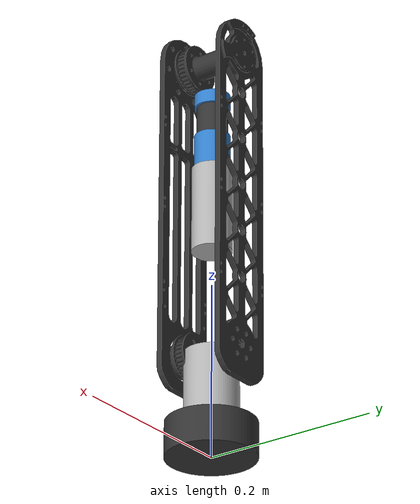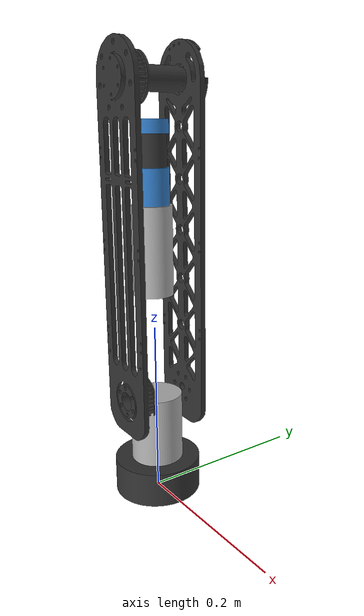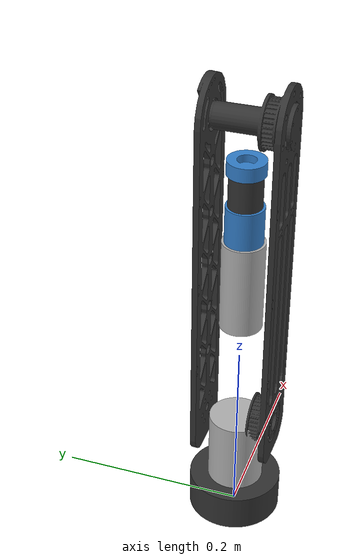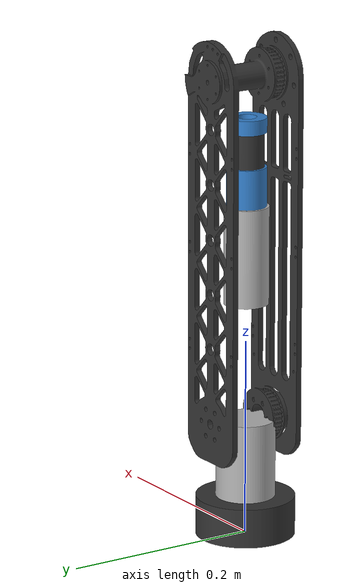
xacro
<?xml version="1.0"?>
<robot xmlns:xacro="http://www.ros.org/wiki/xacro" name="arm_6dof">

  <!-- ===================== MATERIALS ===================== -->
  <material name="dark_grey">
    <color rgba="0.2 0.2 0.2 1.0"/>
  </material>
  <material name="light_grey">
    <color rgba="0.7 0.7 0.7 1.0"/>
  </material>
  <material name="blue">
    <color rgba="0.2 0.5 0.8 1.0"/>
  </material>

  <!-- ===================== BASE LINK ===================== -->
  <link name="base_link">
    <visual>
      <geometry>
        <mesh filename="package://arm_description/meshes/base_link.stl" />
      </geometry>
      <material name="dark_grey"/>
    </visual>
    <collision>
      <geometry>
        <mesh filename="package://arm_description/meshes/base_link.stl" />
      </geometry>
    </collision>
    <inertial>
      <mass value="0.5"/>
      <inertia ixx="0.001" iyy="0.001" izz="0.001" ixy="0" ixz="0" iyz="0"/>
    </inertial>
  </link>

  <!-- ===================== JOINT 1 — Waist (Z axis) ===================== -->
  <joint name="joint_1" type="revolute">
    <parent link="base_link"/>
    <child link="link_1"/>
    <!-- Joint sits on top of base: 40mm up -->
    <origin xyz="0 0 0.04" rpy="0 0 0"/>
    <axis xyz="0 0 1"/>
    <limit lower="-3.14159" upper="3.14159" effort="100" velocity="1.0"/>
  </joint>

  <!-- ===================== LINK 1 ===================== -->
  <link name="link_1">
    <visual>
      <geometry>
        <mesh filename="package://arm_description/meshes/link_1.stl" />
      </geometry>
      <material name="light_grey"/>
    </visual>
    <collision>
      <geometry>
        <mesh filename="package://arm_description/meshes/link_1.stl" />
      </geometry>
    </collision>
    <inertial>
      <mass value="0.4"/>
      <inertia ixx="0.001" iyy="0.001" izz="0.001" ixy="0" ixz="0" iyz="0"/>
    </inertial>
  </link>

  <!-- ===================== JOINT 2 — Shoulder (Y axis) ===================== -->
  <joint name="joint_2" type="revolute">
    <parent link="link_1"/>
    <child link="link_2"/>
    <!-- Joint sits on top of link_1: 80mm up -->
    <origin xyz="0 0 0.08" rpy="0 0 0"/>
    <axis xyz="0 1 0"/>
    <limit lower="-1.5708" upper="1.5708" effort="100" velocity="1.0"/>
  </joint>

  <!-- ===================== LINK 2 ===================== -->
  <link name="link_2">
    <visual>
      <geometry>
        <mesh filename="package://arm_description/meshes/link_2.stl" />
      </geometry>
      <material name="dark_grey"/>
    </visual>
    <collision>
      <geometry>
        <mesh filename="package://arm_description/meshes/link_2.stl" />
      </geometry>
    </collision>
    <inertial>
      <mass value="0.4"/>
      <inertia ixx="0.001" iyy="0.001" izz="0.001" ixy="0" ixz="0" iyz="0"/>
    </inertial>
  </link>

  <!-- ===================== JOINT 3 — Elbow (Y axis) ===================== -->
  <joint name="joint_3" type="revolute">
    <parent link="link_2"/>
    <child link="link_3"/>
    <!-- Joint sits on top of link_2: 120mm up -->
    <origin xyz="0 0 0.12" rpy="0 0 0"/>
    <axis xyz="0 1 0"/>
    <limit lower="-1.5708" upper="1.5708" effort="100" velocity="1.0"/>
  </joint>

  <!-- ===================== LINK 3 ===================== -->
  <link name="link_3">
    <visual>
      <geometry>
        <mesh filename="package://arm_description/meshes/link_3.stl" />
      </geometry>
      <material name="light_grey"/>
    </visual>
    <collision>
      <geometry>
        <mesh filename="package://arm_description/meshes/link_3.stl" />
      </geometry>
    </collision>
    <inertial>
      <mass value="0.3"/>
      <inertia ixx="0.001" iyy="0.001" izz="0.001" ixy="0" ixz="0" iyz="0"/>
    </inertial>
  </link>

  <!-- ===================== JOINT 4 — Wrist roll (X axis) ===================== -->
  <joint name="joint_4" type="revolute">
    <parent link="link_3"/>
    <child link="link_4"/>
    <!-- Joint sits on top of link_3: 100mm up -->
    <origin xyz="0 0 0.10" rpy="0 0 0"/>
    <axis xyz="1 0 0"/>
    <limit lower="-3.14159" upper="3.14159" effort="50" velocity="1.5"/>
  </joint>

  <!-- ===================== LINK 4 ===================== -->
  <link name="link_4">
    <visual>
      <geometry>
        <mesh filename="package://arm_description/meshes/link_4.stl" />
      </geometry>
      <material name="blue"/>
    </visual>
    <collision>
      <geometry>
        <mesh filename="package://arm_description/meshes/link_4.stl" />
      </geometry>
    </collision>
    <inertial>
      <mass value="0.2"/>
      <inertia ixx="0.0005" iyy="0.0005" izz="0.0005" ixy="0" ixz="0" iyz="0"/>
    </inertial>
  </link>

  <!-- ===================== JOINT 5 — Wrist pitch (Y axis) ===================== -->
  <joint name="joint_5" type="revolute">
    <parent link="link_4"/>
    <child link="link_5"/>
    <!-- Joint sits on top of link_4: 40mm up -->
    <origin xyz="0 0 0.04" rpy="0 0 0"/>
    <axis xyz="0 1 0"/>
    <limit lower="-1.5708" upper="1.5708" effort="50" velocity="1.5"/>
  </joint>

  <!-- ===================== LINK 5 ===================== -->
  <link name="link_5">
    <visual>
      <geometry>
        <mesh filename="package://arm_description/meshes/link_5.stl" />
      </geometry>
      <material name="dark_grey"/>
    </visual>
    <collision>
      <geometry>
        <mesh filename="package://arm_description/meshes/link_5.stl" />
      </geometry>
    </collision>
    <inertial>
      <mass value="0.2"/>
      <inertia ixx="0.0005" iyy="0.0005" izz="0.0005" ixy="0" ixz="0" iyz="0"/>
    </inertial>
  </link>

  <!-- ===================== JOINT 6 — Tool roll (Z axis) ===================== -->
  <joint name="joint_6" type="revolute">
    <parent link="link_5"/>
    <child link="link_6"/>
    <!-- Joint sits on top of link_5: 35mm up -->
    <origin xyz="0 0 0.035" rpy="0 0 0"/>
    <axis xyz="0 0 1"/>
    <limit lower="-3.14159" upper="3.14159" effort="30" velocity="2.0"/>
  </joint>

  <!-- ===================== LINK 6 ===================== -->
  <link name="link_6">
    <visual>
      <geometry>
        <mesh filename="package://arm_description/meshes/link_6.stl" />
      </geometry>
      <material name="blue"/>
    </visual>
    <collision>
      <geometry>
        <mesh filename="package://arm_description/meshes/link_6.stl" />
      </geometry>
    </collision>
    <inertial>
      <mass value="0.1"/>
      <inertia ixx="0.0001" iyy="0.0001" izz="0.0001" ixy="0" ixz="0" iyz="0"/>
    </inertial>
  </link>

  <!-- ===================== TOOL LINK ===================== -->
  <joint name="tool_joint" type="fixed">
    <parent link="link_6"/>
    <child link="tool_link"/>
    <origin xyz="0 0 0.015" rpy="0 0 0"/>
  </joint>

  <link name="tool_link">
    <!-- Empty link — end effector attaches here -->
    <inertial>
      <mass value="0.01"/>
      <inertia ixx="0.00001" iyy="0.00001" izz="0.00001" ixy="0" ixz="0" iyz="0"/>
    </inertial>
  </link>

</robot>
